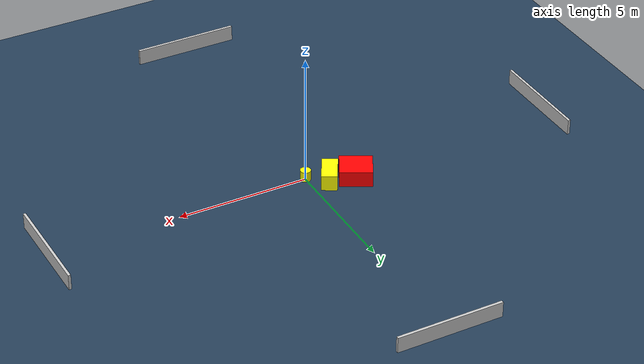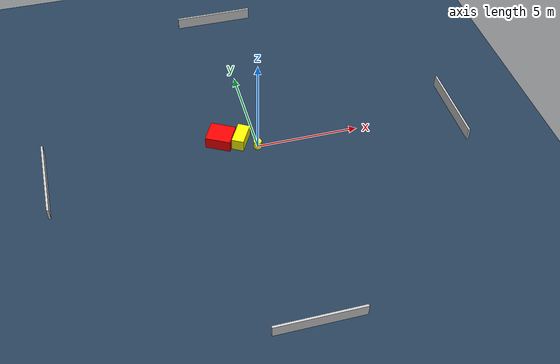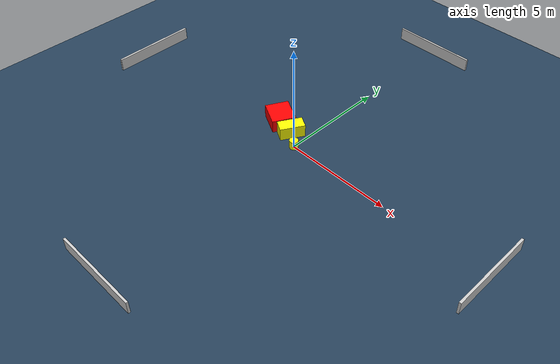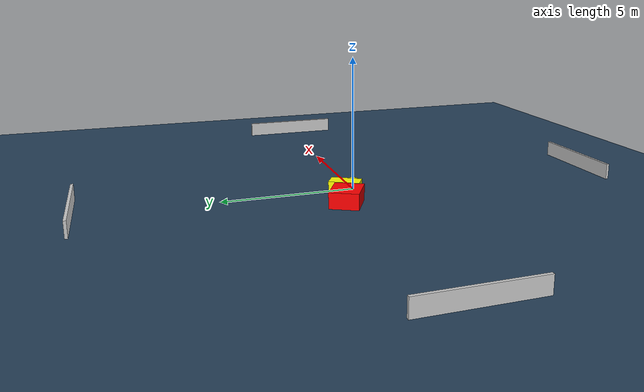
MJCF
<?xml version="1.0" ?>
<mujoco model="generated_environment">
  <option timestep="0.01" integrator="RK4" cone="elliptic"/>
  <default>
    <geom density="1"/>
  </default>
  <asset>
    <texture builtin="gradient" height="3072" name="skybox" rgb1="0.3 0.5 0.7" rgb2="0 0 0" type="skybox" width="512"/>
    <texture builtin="checker" height="300" name="groundplane" rgb1="0.2 0.3 0.4" rgb2="0.1 0.2 0.3" type="2d" width="300"/>
    <material name="groundplane" reflectance="0.2" texrepeat="5 5" texture="groundplane"/>
  </asset>
  <worldbody>
    <light dir="0 0 -1" directional="true" pos="0 0 1.5"/>
    <geom condim="3" friction="0.5 0.005 0.001" material="groundplane" name="floor" pos="0 0 0" size="0 0 0.05" type="plane"/>
    <body name="walls">
      <geom name="wall_1" condim="4" pos="-10.0 0.0 0.3" rgba="0.800000011920929 0.800000011920929 0.800000011920929 1.0" size="0.05 2.0 0.3" type="box"/>
      <geom name="wall_2" condim="4" pos="10.0 0.0 0.3" rgba="0.800000011920929 0.800000011920929 0.800000011920929 1.0" size="0.05 2.0 0.3" type="box"/>
      <geom name="wall_3" condim="4" pos="0.0 -10.0 0.3" rgba="0.800000011920929 0.800000011920929 0.800000011920929 1.0" size="2.0 0.05 0.3" type="box"/>
      <geom name="wall_4" condim="4" pos="0.0 10.0 0.3" rgba="0.800000011920929 0.800000011920929 0.800000011920929 1.0" size="2.0 0.05 0.3" type="box"/>
    </body>
    <body name="robot">
      <joint name="joint_x" type="slide" pos="0 0 0" axis="1 0 0"/>
      <joint name="joint_y" type="slide" pos="0 0 0" axis="0 1 0"/>
      <geom name="robot" type="cylinder" pos="0.0 0.0 0.2" size="0.2 0.2 0.0" mass="5.0" friction="1.0 0.005 0.0001" condim="4" rgba="1.0 1.0 0.0 1.0"/>
    </body>
    <body name="obstacle_1_movable">
      <geom name="obstacle_1_movable" condim="4" pos="-0.698721387356238 0.5257594413551457 0.3" euler="0 0 240.2590223877006" friction="0.0 0.005 0.001" rgba="1.0 1.0 0.0 1.0" size="0.5709313639286124 0.29288714613597217 0.3" type="box" mass="0.1"/>
      <joint type="free"/>
    </body>
    <body name="obstacle_2_static">
      <geom name="obstacle_2_static" condim="4" pos="-1.6386835598644027 0.7796390644602593 0.3" euler="0 0 62.15495940003049" friction="0.0 0.005 0.001" rgba="1.0 0.0 0.0 1.0" size="0.5412542834375644 0.607753444505387 0.3" type="box"/>
    </body>
  </worldbody>
  <actuator>
    <motor name="actuator_x" joint="joint_x" gear="1" ctrlrange="-1 1"/>
    <motor name="actuator_y" joint="joint_y" gear="1" ctrlrange="-1 1"/>
  </actuator>
</mujoco>
